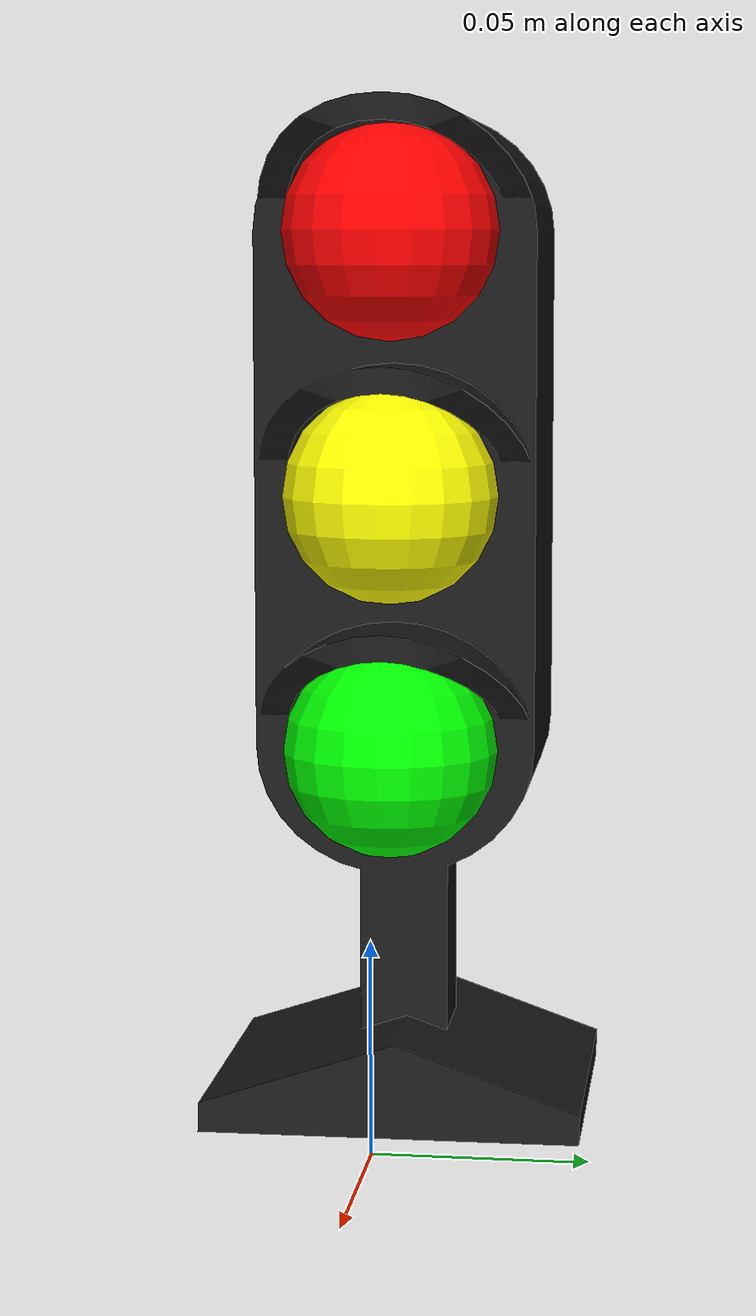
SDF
<?xml version='1.0'?>
<sdf version="1.8">
  <model name='traffic_light'>
    <static>true</static>

    <link name='case'>
      <pose>-0.048681 0.002156 0 0 -0 0</pose>
      <visual name='visual'>
        <geometry>
          <mesh>
            <uri>model://traffic_light/meshes/traffic_light_case.dae</uri>
            <scale>1 1 1</scale>
          </mesh>
        </geometry>
        <material>
          <ambient>0.1 0.1 0.1 1</ambient>
          <diffuse>0.1 0.1 0.1 1</diffuse>
        </material>
      </visual>
      <collision name='collision'>
        <geometry>
          <box>
            <size>0.25 0.25 0.75</size>
          </box>
        </geometry>
      </collision>
    </link>

    <link name='green_lens'>
      <pose>-0.018681 0.002156 0.09102 0 -0 0</pose>
      <visual name='visual'>
        <geometry>
          <sphere><radius>0.025</radius></sphere>
        </geometry>
        <material>
          <ambient>0 1 0 1</ambient>
          <diffuse>0 1 0 1</diffuse>
          <emissive>0 1 0 1</emissive>
        </material>
      </visual>
    </link>

    <link name='yellow_lens'>
      <pose>-0.018681 0.002156 0.15 0 -0 0</pose>
      <visual name='visual'>
        <geometry>
          <sphere><radius>0.025</radius></sphere>
        </geometry>
        <material>
          <ambient>1 1 0 1</ambient>
          <diffuse>1 1 0 1</diffuse>
          <emissive>1 1 0 1</emissive>
        </material>
      </visual>
    </link>

    <link name='red_lens'>
      <pose>-0.018681 0.002156 0.21022 0 -0 0</pose>
      <visual name='visual'>
        <geometry>
          <sphere><radius>0.025</radius></sphere>
        </geometry>
        <material>
          <ambient>1 0 0 1</ambient>
          <diffuse>1 0 0 1</diffuse>
          <emissive>1 0 0 1</emissive>
        </material>
      </visual>
    </link>

    <joint name="green_joint" type="fixed">
      <parent>case</parent> <child>green_lens</child>
    </joint>
    <joint name="yellow_joint" type="fixed">
      <parent>case</parent> <child>yellow_lens</child>
    </joint>
    <joint name="red_joint" type="fixed">
      <parent>case</parent> <child>red_lens</child>
    </joint>

    <plugin name="traffic_light_plugin" filename="/home/ros_dev/BFMC_workspace/files/ros/install/traffic_light_plugin/lib/traffic_light_plugin/libTrafficLightPlugin.so"></plugin>

  </model>
</sdf>
